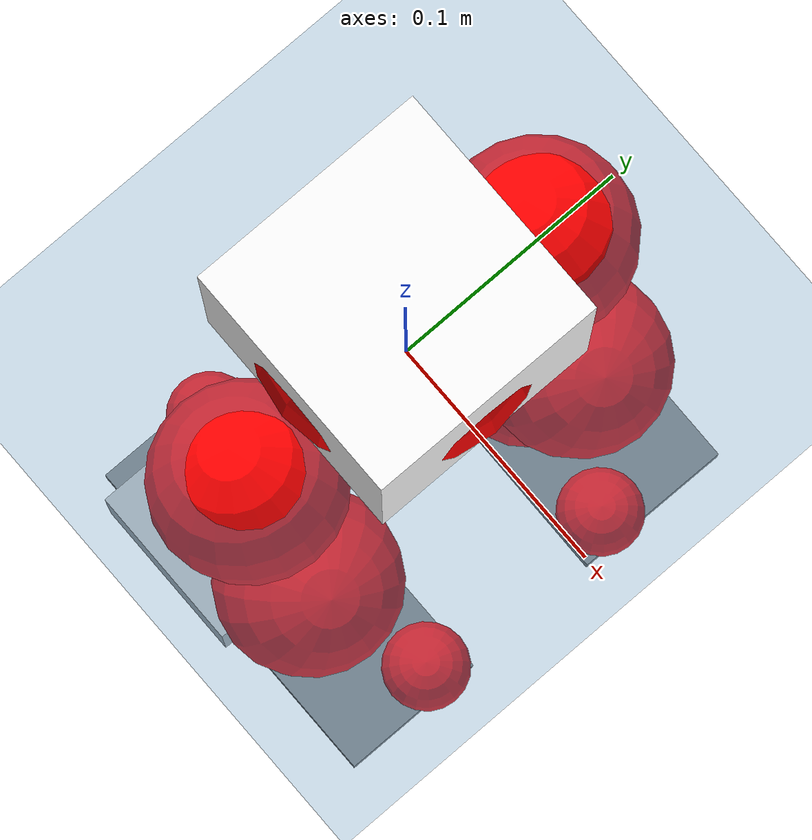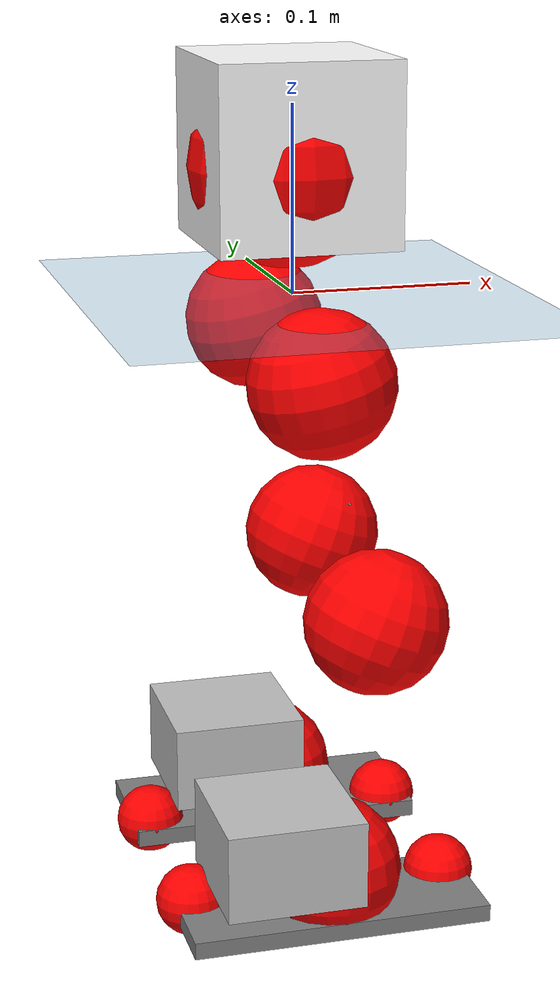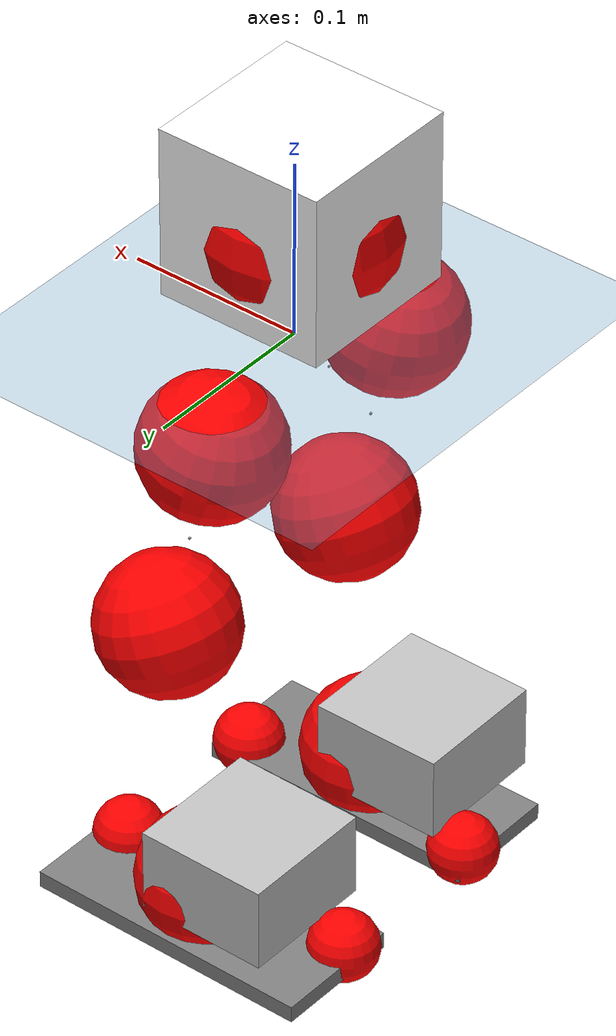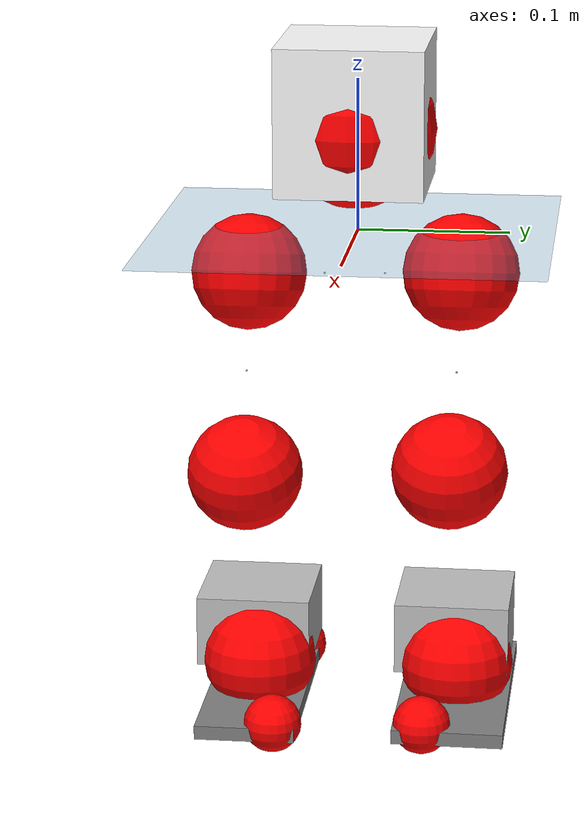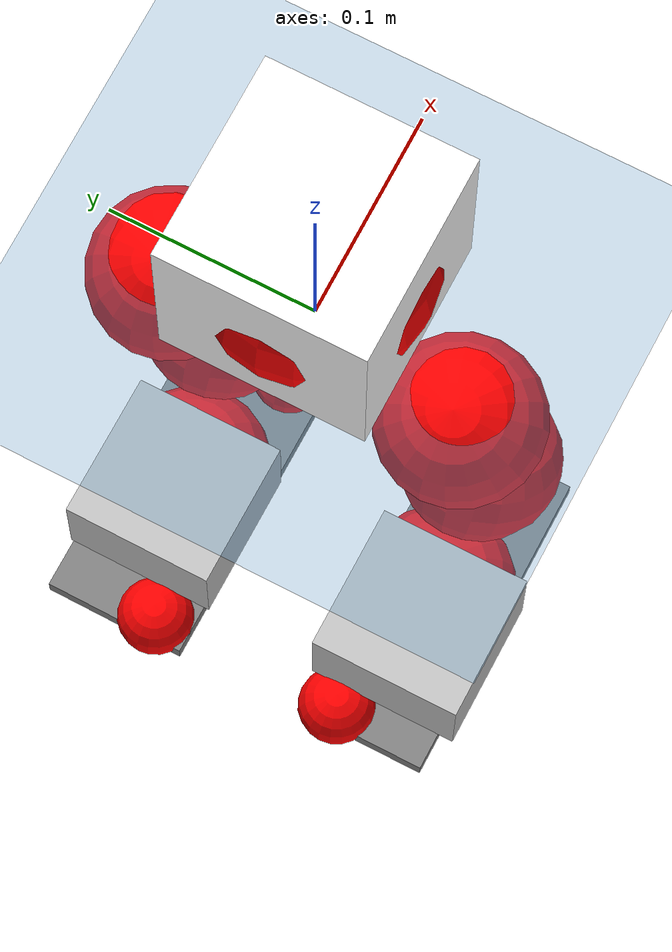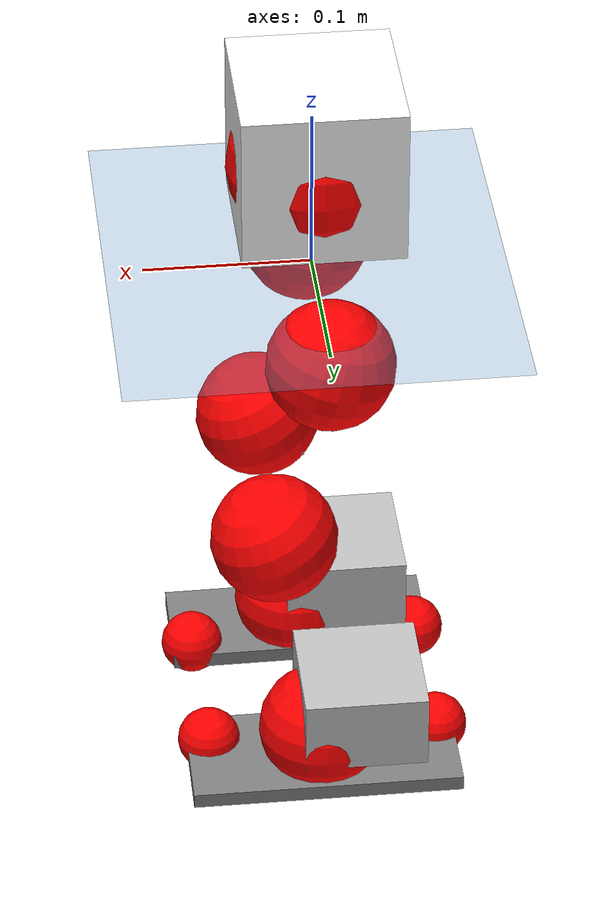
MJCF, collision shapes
<mujoco model="pi_12dof_release_v1">
  <compiler angle="radian" assetdir="assets" balanceinertia="true" inertiafromgeom="false"/>

  <option timestep="0.005" density="1.2" viscosity="2e-05"/>

  <size nkey="1"/>

  <visual>
    <quality shadowsize="8192"/>
    <map shadowclip="0.5"/>
  </visual>

  <default>
    <default class="/">
      <joint armature="0.01" damping="0.01" frictionloss="0.01"/>
      <geom contype="0" conaffinity="0" group="1" solref="-1000 -80"/>
      <site size="0.01 0.005 0.005" group="5"/>
      <general forcelimited="true" biastype="affine" gainprm="20" biasprm="0 -20 -0.5"/>
      <default class="foot">
        <geom size="0.0845 0.036 0.005" type="box" condim="6" group="4" priority="1" friction="0.9 0.2 0.2" solimp="0.015 1 0.005"/>
      </default>
      <default class="reward_collision_sphere">
        <geom group="5" rgba="1 0 0 1"/>
      </default>
    </default>
  </default>

  <asset>
    <texture type="skybox" colorspace="auto" name="//unnamed_texture_0" builtin="gradient" rgb1="0.95 0.95 0.95" rgb2="0.95 0.95 0.95" width="100" height="600"/>
    <texture type="2d" colorspace="auto" name="texplane" builtin="checker" rgb1="0.345 0.575 0.748" rgb2="0.345 0.575 0.748" markrgb="1 1 1" width="512" height="512"/>
    <material name="MatPlane" class="/" texture="texplane" texuniform="true" texrepeat="2 2" specular="0.9"/>
    <mesh name="baselink_1" class="/" file="baselink_1.STL"/>
    <mesh name="r_hip_pitch_link" class="/" file="r_hip_pitch_link.STL"/>
    <mesh name="r_hip_roll_link" class="/" file="r_hip_roll_link.STL"/>
    <mesh name="r_thigh_link" class="/" file="r_thigh_link.STL"/>
    <mesh name="r_calf_link" class="/" file="r_calf_link.STL"/>
    <mesh name="r_ankle_pitch_link" class="/" file="r_ankle_pitch_link.STL"/>
    <mesh name="r_ankle_roll_link" class="/" file="r_ankle_roll_link.STL"/>
    <mesh name="l_hip_pitch_link" class="/" file="l_hip_pitch_link.STL"/>
    <mesh name="l_hip_roll_link" class="/" file="l_hip_roll_link.STL"/>
    <mesh name="l_thigh_link" class="/" file="l_thigh_link.STL"/>
    <mesh name="l_calf_link" class="/" file="l_calf_link.STL"/>
    <mesh name="l_ankle_pitch_link" class="/" file="l_ankle_pitch_link.STL"/>
    <mesh name="l_ankle_roll_link" class="/" file="l_ankle_roll_link.STL"/>
  </asset>

  <worldbody>
    <geom name="floor" class="/" size="100 100 0.125" type="plane" group="0" material="MatPlane"/>
    <light name="toplight_shadow" class="/" pos="0 0 5" dir="0.0990148 0.0990148 -0.990148" type="directional" ambient="0.04 0.04 0.04" diffuse="0.55 0.55 0.55" specular="0.12 0.12 0.12"/>
    <light name="toplight_fill" class="/" pos="0 0 5" dir="0.0990148 0.0990148 -0.990148" type="directional" castshadow="false" ambient="0.04 0.04 0.04" diffuse="0.3 0.3 0.3" specular="0.08 0.08 0.08"/>
    <body name="trunk" pos="-0.00270798 -0.00169693 0.000528754" quat="0.999999 -0.000615931 -7.96131e-05 -0.000972156">
      <inertial pos="-0.000255975 0.000583337 0.0384877" quat="0.693935 0.0083851 0.0112095 0.719901" mass="1.93393" diaginertia="0.0128075 0.00502659 0.00354276"/>
      <joint name="//unnamed_joint_0" type="free"/>
      <geom name="//unnamed_geom_1" class="/" type="mesh" density="0" rgba="1 1 1 1" mesh="baselink_1"/>
      <geom name="//unnamed_geom_2" class="/" size="0.0484175 0.0484175 0.0484175" pos="0 0 0.0770038" type="box" rgba="1 1 1 1"/>
      <geom name="//unnamed_geom_3" class="reward_collision_sphere" size="0.0532592" pos="0 0 0.0673784"/>
      <site name="imu" class="/" pos="0.00218029 -0.00349569 0.00529272" size="0.0096835"/>
      <camera name="track" class="/" pos="0 -1.77894 0" quat="0.707107 0.707107 0 0" mode="trackcom"/>
      <camera name="ego_camera" class="/" pos="0.0789774 0 0.173259" quat="-0.5 -0.5 0.5 0.5"/>
      <body name="r_hip_pitch_link" pos="-0.00107159 -0.0206674 -0.0317212" quat="0.992312 0.000755579 -0.123754 0.000540007">
        <inertial pos="-0.00159054 -0.0510797 9.9766e-05" quat="-0.0171838 0.705829 -0.0263769 0.707682" mass="0.348143" diaginertia="0.000146196 5.44417e-05 7.13612e-05"/>
        <joint name="r_hip_pitch_joint" class="/" pos="0 0 0" axis="-0.00276026 -0.999996 -0.000653355" range="-1.75058 1.23087" armature="0.00960723" damping="0.0126982" frictionloss="0.0105456"/>
        <geom name="//unnamed_geom_4" class="/" type="mesh" density="0" rgba="0.75294 0.75294 0.75294 1" mesh="r_hip_pitch_link"/>
        <geom name="//unnamed_geom_5" class="/" size="0.000484175 0.000484175 0.000484175" type="box" rgba="0.75294 0.75294 0.75294 1"/>
        <body name="r_hip_roll_link" pos="-0.00109229 -0.0507079 -0.00034287" quat="1 4.49107e-05 -1.74961e-05 -7.71444e-05">
          <inertial pos="0.00115945 0.000162247 -0.0565534" quat="0.706059 -0.0808426 -0.0812877 0.698811" mass="0.356031" diaginertia="0.00042996 0.000152162 0.000106445"/>
          <joint name="r_hip_roll_joint" class="/" pos="0 0 0" axis="-1 -9.00817e-05 0.000148681" stiffness="0.00485591" range="-0.167411 0.501455" armature="0.00830716" damping="0" frictionloss="0.00992804"/>
          <geom name="//unnamed_geom_6" class="/" type="mesh" density="0" rgba="0.75294 0.75294 0.75294 1" mesh="r_hip_roll_link"/>
          <geom name="//unnamed_geom_7" class="/" size="0.000484175 0.000484175 0.000484175" type="box" rgba="0.75294 0.75294 0.75294 1"/>
          <geom name="//unnamed_geom_8" class="reward_collision_sphere" size="0.038734"/>
          <body name="r_thigh_link" pos="-0.00142718 -0.000431802 -0.0660024" quat="1 0.00036432 0.000547035 0.00022061">
            <inertial pos="0.00130497 0.000906333 -0.0476054" quat="0.730229 0.683159 -0.00269254 0.0071842" mass="0.101156" diaginertia="0.000163852 5.29929e-05 4.70548e-05"/>
            <joint name="r_thigh_joint" class="/" pos="0 0 0" axis="-0.00423756 -0.00741706 -0.999964" range="-0.306075 0.620437" armature="0.00845731" damping="0.00180526" frictionloss="0.00943346"/>
            <geom name="//unnamed_geom_9" class="/" type="mesh" density="0" rgba="0.75294 0.75294 0.75294 1" mesh="r_thigh_link"/>
            <geom name="//unnamed_geom_10" class="/" size="0.000484175 0.000484175 0.000484175" type="box" rgba="0.75294 0.75294 0.75294 1"/>
            <body name="r_calf_link" pos="-0.00141549 0.000472263 -0.0682089" quat="0.94765 1.7517e-06 0.31931 -7.98307e-07">
              <inertial pos="0.0017419 -0.00182481 -0.0671666" quat="0.999987 -0.00256664 0.00254712 0.00346428" mass="0.777787" diaginertia="0.00468732 0.00201374 0.000144919"/>
              <joint name="r_calf_joint" class="/" pos="0 0 0" axis="0.000683711 -0.999996 -0.00277555" stiffness="0.0106938" range="-1.66094 0.59719" armature="0.0110982" damping="0" frictionloss="0.010972"/>
              <geom name="//unnamed_geom_11" class="/" type="mesh" density="0" rgba="0.75294 0.75294 0.75294 1" mesh="r_calf_link"/>
              <geom name="//unnamed_geom_12" class="/" size="0.000484175 0.000484175 0.000484175" type="box" rgba="0.75294 0.75294 0.75294 1"/>
              <geom name="//unnamed_geom_13" class="reward_collision_sphere" size="0.038734"/>
              <body name="r_ankle_pitch_link" pos="-0.000685772 0.00156194 -0.132251" quat="0.980226 -0.000721023 -0.19788 -0.00089018">
                <inertial pos="0.00317714 0.000631213 0.000735486" quat="0.00138902 0.70655 -0.00392059 0.70765" mass="0.155806" diaginertia="0.000400585 0.000124901 9.70267e-05"/>
                <joint name="r_ankle_pitch_joint" class="/" pos="0 0 0" axis="0.0109649 -0.999898 0.0091073" range="-1.34298 0.543943" armature="0.0100469" damping="0.0070455" frictionloss="0.00892314"/>
                <geom name="//unnamed_geom_14" class="/" type="mesh" density="0" rgba="0.75294 0.75294 0.75294 1" mesh="r_ankle_pitch_link"/>
                <geom name="//unnamed_geom_15" class="/" size="0.0377656 0.038734 0.0242087" type="box" rgba="0.75294 0.75294 0.75294 1"/>
                <body name="r_ankle_roll_link" pos="0.0821992 0.00371826 -0.000320408" quat="1 9.12272e-06 9.71272e-06 1.17582e-06">
                  <inertial pos="-0.0243529 0.000286788 -0.0130579" quat="0.560354 0.429537 0.432988 0.560377" mass="0.478459" diaginertia="0.0015555 0.000577599 0.00024266"/>
                  <joint name="r_ankle_roll_joint" class="/" pos="0 0 0" axis="-0.999918 -0.0107725 -0.00686834" range="-0.155347 0.103125" armature="0.00915237" damping="0" frictionloss="0.00974185"/>
                  <geom name="//unnamed_geom_16" class="/" type="mesh" density="0" rgba="0.75294 0.75294 0.75294 1" mesh="r_ankle_roll_link"/>
                  <geom name="//unnamed_geom_17" class="/" type="mesh" rgba="0.75294 0.75294 0.75294 1" mesh="r_ankle_roll_link"/>
                  <geom name="right_foot" class="foot" size="0.0821715 0.033321 0.00472219" pos="-0.0537047 0 -0.0423521"/>
                  <geom name="//unnamed_geom_19" class="reward_collision_sphere" size="0.038734" pos="-0.0526516 0 -0.019251"/>
                  <geom name="//unnamed_geom_20" class="reward_collision_sphere" size="0.019367" pos="0.0157955 0.0177894 -0.0385019"/>
                  <geom name="//unnamed_geom_21" class="reward_collision_sphere" size="0.019367" pos="-0.126364 0.0177894 -0.0385019"/>
                  <site name="right_foot" class="foot" pos="-0.0537047 0 -0.0423521" size="0.0096835"/>
                </body>
              </body>
            </body>
          </body>
        </body>
      </body>
      <body name="l_hip_pitch_link" pos="0.00157062 0.0196834 -0.0301419" quat="0.992128 -0.000360767 -0.12522 -0.00100712">
        <inertial pos="0.00357588 0.0490763 0.000478293" quat="-0.0381526 0.705456 0.0293437 0.707118" mass="0.351689" diaginertia="0.000167586 6.03244e-05 8.49153e-05"/>
        <joint name="l_hip_pitch_joint" class="/" pos="0 0 0" axis="-0.00462109 0.999988 -0.00158353" range="-1.22875 1.76366" armature="0.0106888" damping="0" frictionloss="0.00952997"/>
        <geom name="//unnamed_geom_22" class="/" type="mesh" density="0" rgba="0.75294 0.75294 0.75294 1" mesh="l_hip_pitch_link"/>
        <geom name="//unnamed_geom_23" class="/" size="0.000484175 0.000484175 0.000484175" type="box" rgba="0.75294 0.75294 0.75294 1"/>
        <body name="l_hip_roll_link" pos="-0.00249558 0.0500999 0.00209395" quat="0.999999 -0.000674554 0.00115647 9.09282e-05">
          <inertial pos="-0.00162794 7.18754e-05 -0.0578455" quat="0.699161 -0.0859276 -0.0709891 0.706223" mass="0.342152" diaginertia="0.000425937 0.00015037 0.00010505"/>
          <joint name="l_hip_roll_joint" class="/" pos="0 0 0" axis="-0.999996 -0.00261983 0.00123973" stiffness="0.00969394" range="-0.481461 0.125789" armature="0.0106659" damping="0" frictionloss="0.00979918"/>
          <geom name="//unnamed_geom_24" class="/" type="mesh" density="0" rgba="0.75294 0.75294 0.75294 1" mesh="l_hip_roll_link"/>
          <geom name="//unnamed_geom_25" class="/" size="0.000484175 0.000484175 0.000484175" type="box" rgba="0.75294 0.75294 0.75294 1"/>
          <geom name="//unnamed_geom_26" class="reward_collision_sphere" size="0.038734"/>
          <body name="l_thigh_link" pos="-0.000113881 -0.00115036 -0.0661492" quat="1 0.000192712 -2.1973e-06 -0.000190704">
            <inertial pos="0.000641695 -0.00142913 -0.0450473" quat="0.675064 0.737759 -0.000108822 -0.000636749" mass="0.10174" diaginertia="0.000161855 5.28497e-05 4.7363e-05"/>
            <joint name="l_thigh_joint" class="/" pos="0 0 0" axis="0.00239317 0.00477674 -0.999986" range="-0.597393 0.311599" armature="0.00933243" damping="0.000435367" frictionloss="0.009879"/>
            <geom name="//unnamed_geom_27" class="/" type="mesh" density="0" rgba="0.75294 0.75294 0.75294 1" mesh="l_thigh_link"/>
            <geom name="//unnamed_geom_28" class="/" size="0.000484175 0.000484175 0.000484175" type="box" rgba="0.75294 0.75294 0.75294 1"/>
            <body name="l_calf_link" pos="0.000913898 -0.0023921 -0.0655573" quat="0.947544 0.000103658 0.319623 -0.000960299">
              <inertial pos="0.000191924 0.0047222 -0.0680143" quat="0.999859 0.00728032 -0.0117143 0.00954282" mass="0.735228" diaginertia="0.00459513 0.00197274 0.00014465"/>
              <joint name="l_calf_joint" class="/" pos="0 0 0" axis="0.00328649 0.999994 0.000642383" stiffness="0.00177943" range="-0.633088 1.64371" armature="0.00838738" damping="0.00617305" frictionloss="0.0109938"/>
              <geom name="//unnamed_geom_29" class="/" type="mesh" density="0" rgba="0.75294 0.75294 0.75294 1" mesh="l_calf_link"/>
              <geom name="//unnamed_geom_30" class="/" size="0.000484175 0.000484175 0.000484175" type="box" rgba="0.75294 0.75294 0.75294 1"/>
              <geom name="//unnamed_geom_31" class="reward_collision_sphere" size="0.038734"/>
              <body name="l_ankle_pitch_link" pos="0.000820019 0.00107286 -0.137263" quat="0.980064 -1.14213e-05 -0.198681 9.04971e-06">
                <inertial pos="0.0048928 -0.00118346 0.000322102" quat="-0.00193593 0.707062 0.00385048 0.707138" mass="0.16077" diaginertia="0.000403379 0.000124994 9.64941e-05"/>
                <joint name="l_ankle_pitch_joint" class="/" pos="0 0 0" axis="-0.00297644 0.999995 0.00143" stiffness="0.00079726" range="-0.483975 1.30528" armature="0.00966558" damping="0.00440867" frictionloss="0.00954689"/>
                <geom name="//unnamed_geom_32" class="/" type="mesh" density="0" rgba="0.75294 0.75294 0.75294 1" mesh="l_ankle_pitch_link"/>
                <geom name="//unnamed_geom_33" class="/" size="0.0377656 0.038734 0.0242087" type="box" rgba="0.75294 0.75294 0.75294 1"/>
                <body name="l_ankle_roll_link" pos="0.0770348 0.0029554 0.000275865" quat="1 0.00026081 0.000166294 -0.00046754">
                  <inertial pos="-0.0229276 -0.00111975 -0.0133984" quat="0.560704 0.431781 0.434826 0.556868" mass="0.470257" diaginertia="0.00142723 0.000541911 0.000230325"/>
                  <joint name="l_ankle_roll_joint" class="/" pos="0 0 0" axis="-0.999924 -0.0111624 0.00526373" range="-0.132161 0.151085" armature="0.00990482" damping="0.0113963" frictionloss="0.00916429"/>
                  <geom name="//unnamed_geom_34" class="/" type="mesh" density="0" rgba="0.75294 0.75294 0.75294 1" mesh="l_ankle_roll_link"/>
                  <geom name="//unnamed_geom_35" class="/" type="mesh" rgba="0.75294 0.75294 0.75294 1" mesh="l_ankle_roll_link"/>
                  <geom name="left_foot" class="foot" size="0.0833169 0.0369793 0.00478676" pos="-0.0537047 0 -0.0423521"/>
                  <geom name="//unnamed_geom_37" class="reward_collision_sphere" size="0.038734" pos="-0.0526516 0 -0.019251"/>
                  <geom name="//unnamed_geom_38" class="reward_collision_sphere" size="0.019367" pos="0.0157955 -0.0177894 -0.0385019"/>
                  <geom name="//unnamed_geom_39" class="reward_collision_sphere" size="0.019367" pos="-0.126364 -0.0177894 -0.0385019"/>
                  <site name="left_foot" class="foot" pos="-0.0537047 0 -0.0423521" size="0.0096835"/>
                </body>
              </body>
            </body>
          </body>
        </body>
      </body>
    </body>
  </worldbody>

  <contact>
    <pair class="/" geom1="floor" geom2="right_foot" name="//unnamed_contact_1"/>
    <pair class="/" geom1="floor" geom2="left_foot" name="//unnamed_contact_0"/>
  </contact>

  <actuator>
    <general name="r_hip_pitch_joint" class="/" joint="r_hip_pitch_joint" forcerange="-21.1237 21.1237" gainprm="19.1786" biasprm="0 -19.1786 -0.480445"/>
    <general name="r_hip_roll_joint" class="/" joint="r_hip_roll_joint" forcerange="-20.1926 20.1926" gainprm="19.1786" biasprm="0 -19.1786 -0.480445"/>
    <general name="r_thigh_joint" class="/" joint="r_thigh_joint" forcerange="-20.516 20.516" gainprm="19.1786" biasprm="0 -19.1786 -0.480445"/>
    <general name="r_calf_joint" class="/" joint="r_calf_joint" forcerange="-20.9381 20.9381" gainprm="19.1786" biasprm="0 -19.1786 -0.480445"/>
    <general name="r_ankle_pitch_joint" class="/" joint="r_ankle_pitch_joint" forcerange="-19.5995 19.5995" gainprm="19.1786" biasprm="0 -19.1786 -0.480445"/>
    <general name="r_ankle_roll_joint" class="/" joint="r_ankle_roll_joint" forcerange="-21.0114 21.0114" gainprm="19.1786" biasprm="0 -19.1786 -0.480445"/>
    <general name="l_hip_pitch_joint" class="/" joint="l_hip_pitch_joint" forcerange="-19.9784 19.9784" gainprm="19.1786" biasprm="0 -19.1786 -0.480445"/>
    <general name="l_hip_roll_joint" class="/" joint="l_hip_roll_joint" forcerange="-20.0532 20.0532" gainprm="19.1786" biasprm="0 -19.1786 -0.480445"/>
    <general name="l_thigh_joint" class="/" joint="l_thigh_joint" forcerange="-20.3865 20.3865" gainprm="19.1786" biasprm="0 -19.1786 -0.480445"/>
    <general name="l_calf_joint" class="/" joint="l_calf_joint" forcerange="-22.3471 22.3471" gainprm="19.1786" biasprm="0 -19.1786 -0.480445"/>
    <general name="l_ankle_pitch_joint" class="/" joint="l_ankle_pitch_joint" forcerange="-20.1928 20.1928" gainprm="19.1786" biasprm="0 -19.1786 -0.480445"/>
    <general name="l_ankle_roll_joint" class="/" joint="l_ankle_roll_joint" forcerange="-18.8171 18.8171" gainprm="19.1786" biasprm="0 -19.1786 -0.480445"/>
  </actuator>

  <sensor>
    <gyro site="imu" name="imu_angular_velocity"/>
    <velocimeter site="imu" name="imu_linear_velocity"/>
    <framelinvel objtype="site" objname="left_foot" name="left_foot_global_linear_velocity"/>
    <framelinvel objtype="site" objname="right_foot" name="right_foot_global_linear_velocity"/>
  </sensor>

  <keyframe>
    <key name="home" qpos="0 0 0.291 1 0 0 0 0.4 0 0 -0.8 0.4 0 -0.4 0 0 0.8 -0.4 0"/>
  </keyframe>
</mujoco>
